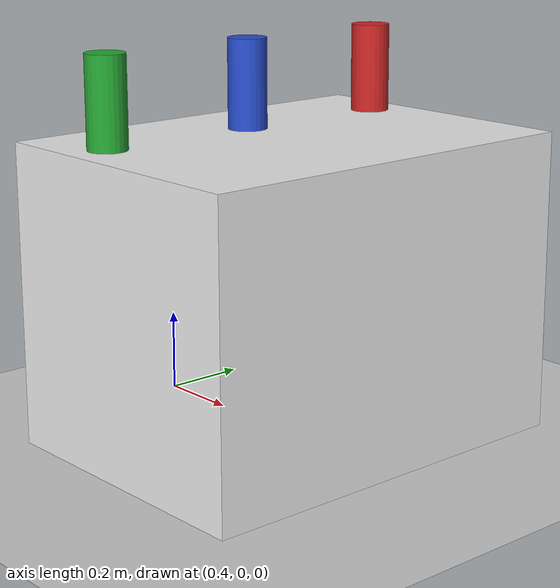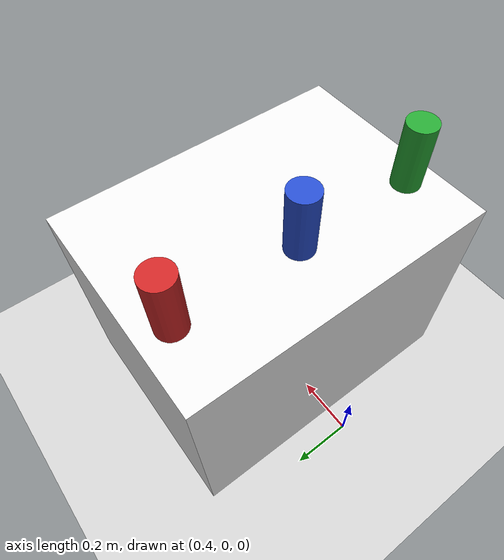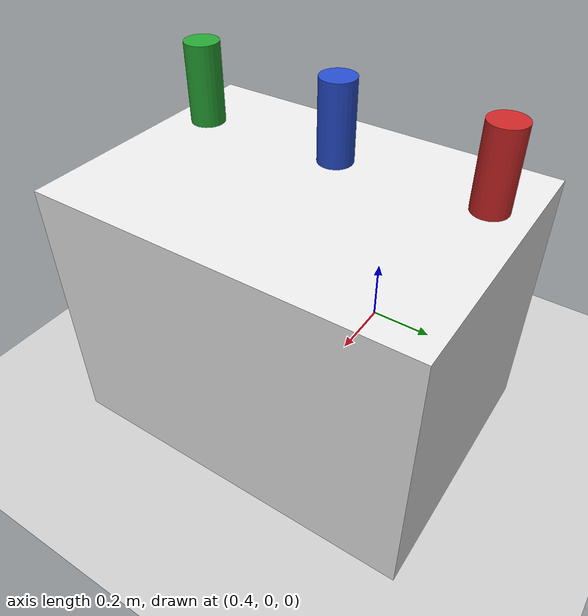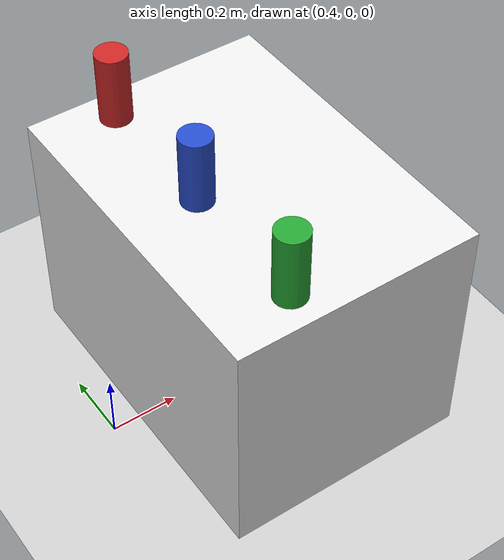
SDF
<sdf version="1.4">
 <world name="default">
  <light name="sun" type="directional">
   <pose>0 0 10 0 -0 0</pose>
   <diffuse>0.8 0.8 0.8 1</diffuse>
   <specular>0.2 0.2 0.2 1</specular>
   <attenuation>
    <range>1000</range>
    <constant>0.9</constant>
    <linear>0.01</linear>
    <quadratic>0.001</quadratic>
   </attenuation>
   <direction>-0.5 0.1 -0.9</direction>
  </light>
  <model name="ground_plane">
   <static>1</static>
   <link name="link">
    <collision name="collision">
     <geometry><plane><normal>0 0 1</normal><size>100 100</size></plane></geometry>
     <surface><friction><ode><mu>100</mu><mu2>50</mu2></ode></friction></surface>
    </collision>
    <visual name="visual">
     <cast_shadows>0</cast_shadows>
     <geometry><plane><normal>0 0 1</normal><size>100 100</size></plane></geometry>
     <material>
      <script><uri>file://media/materials/scripts/gazebo.material</uri><name>Gazebo/Grey</name></script>
     </material>
    </visual>
    <velocity_decay><linear>0</linear><angular>0</angular></velocity_decay>
   </link>
  </model>
  <physics type="ode">
   <max_step_size>0.001</max_step_size>
   <real_time_factor>1</real_time_factor>
   <real_time_update_rate>1000</real_time_update_rate>
   <gravity>0 0 -9.8</gravity>
  </physics>
  <scene><ambient>0.4 0.4 0.4 1</ambient><background>0.7 0.7 0.7 1</background><shadows>1</shadows></scene>
  <spherical_coordinates>
   <surface_model>EARTH_WGS84</surface_model>
   <latitude_deg>0</latitude_deg>
   <longitude_deg>0</longitude_deg>
   <elevation>0</elevation>
   <heading_deg>0</heading_deg>
  </spherical_coordinates>
  <model name="unit_box_1">
   <pose>0.845863 1.5e-05 0.351964 9e-06 -0.002018 -1.5e-05</pose>
   <link name="link">
    <inertial>
     <mass>1</mass>
     <inertia><ixx>1</ixx><ixy>0</ixy><ixz>0</ixz><iyy>1</iyy><iyz>0</iyz><izz>1</izz></inertia>
    </inertial>
    <collision name="collision"><geometry><box><size>0.72549 1 0.743696</size></box></geometry></collision>
    <visual name="visual">
     <geometry><box><size>0.72549 1 0.743696</size></box></geometry>
     <material>
      <script><uri>file://media/materials/scripts/gazebo.material</uri><name>Gazebo/White</name></script>
     </material>
    </visual>
    <velocity_decay><linear>0</linear><angular>0</angular></velocity_decay>
   </link>
   <static>0</static>
  </model>
  <model name="unit_cylinder_Red">
   <pose>0.701716 0.400784 0.83095 -0.000312 -0.001838 0.002374</pose>
   <link name="link">
    <inertial>
     <mass>1</mass>
     <inertia><ixx>1</ixx><ixy>0</ixy><ixz>0</ixz><iyy>1</iyy><iyz>0</iyz><izz>1</izz></inertia>
    </inertial>
    <collision name="collision">
     <geometry><cylinder><radius>0.0465445</radius><length>0.21488</length></cylinder></geometry>
    </collision>
    <visual name="visual">
     <geometry><cylinder><radius>0.0465445</radius><length>0.21488</length></cylinder></geometry>
     <material>
      <script><uri>file://media/materials/scripts/gazebo.material</uri><name>Gazebo/Red</name></script>
     </material>
    </visual>
    <velocity_decay><linear>0</linear><angular>0</angular></velocity_decay>
   </link>
   <static>0</static>
  </model>
  <model name="unit_cylinder_Blue">
   <pose>0.701716 0.000784 0.83095 -0.000312 -0.001838 0.002374</pose>
   <link name="link">
    <inertial>
     <mass>1</mass>
     <inertia><ixx>1</ixx><ixy>0</ixy><ixz>0</ixz><iyy>1</iyy><iyz>0</iyz><izz>1</izz></inertia>
    </inertial>
    <collision name="collision">
     <geometry><cylinder><radius>0.0465445</radius><length>0.21488</length></cylinder></geometry>
    </collision>
    <visual name="visual">
     <geometry><cylinder><radius>0.0465445</radius><length>0.21488</length></cylinder></geometry>
     <material>
      <script><uri>file://media/materials/scripts/gazebo.material</uri><name>Gazebo/Blue</name></script>
     </material>
    </visual>
    <velocity_decay><linear>0</linear><angular>0</angular></velocity_decay>
   </link>
   <static>0</static>
  </model>
  <model name="unit_cylinder_Green">
   <pose>0.701716 -0.400784 0.83095 -0.000312 -0.001838 0.002374</pose>
   <link name="link">
    <inertial>
     <mass>1</mass>
     <inertia><ixx>1</ixx><ixy>0</ixy><ixz>0</ixz><iyy>1</iyy><iyz>0</iyz><izz>1</izz></inertia>
    </inertial>
    <collision name="collision">
     <geometry><cylinder><radius>0.0465445</radius><length>0.21488</length></cylinder></geometry>
    </collision>
    <visual name="visual">
     <geometry><cylinder><radius>0.0465445</radius><length>0.21488</length></cylinder></geometry>
     <material>
      <script><uri>file://media/materials/scripts/gazebo.material</uri><name>Gazebo/Green</name></script>
     </material>
    </visual>
    <velocity_decay><linear>0</linear><angular>0</angular></velocity_decay>
   </link>
   <static>0</static>
  </model>
 </world>
</sdf>
